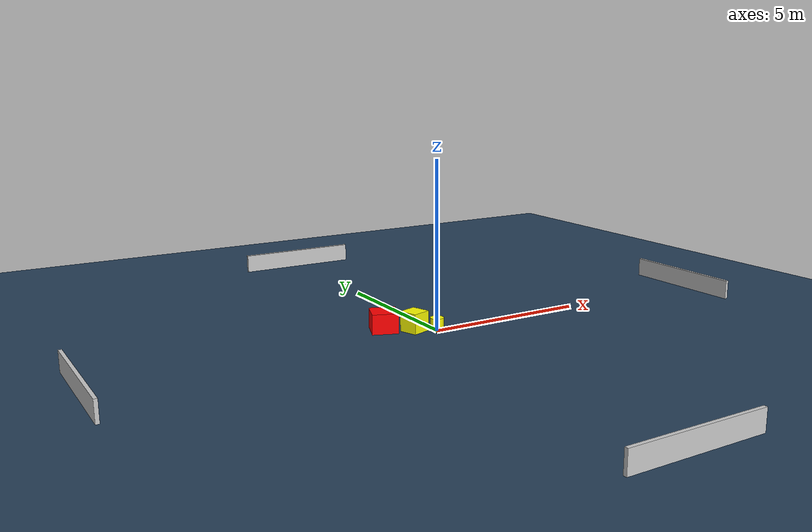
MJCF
<?xml version="1.0" ?>
<mujoco model="generated_environment">
  <option timestep="0.01" integrator="RK4" cone="elliptic"/>
  <default>
    <geom density="1"/>
  </default>
  <asset>
    <texture builtin="gradient" height="3072" name="skybox" rgb1="0.3 0.5 0.7" rgb2="0 0 0" type="skybox" width="512"/>
    <texture builtin="checker" height="300" name="groundplane" rgb1="0.2 0.3 0.4" rgb2="0.1 0.2 0.3" type="2d" width="300"/>
    <material name="groundplane" reflectance="0.2" texrepeat="5 5" texture="groundplane"/>
  </asset>
  <worldbody>
    <light dir="0 0 -1" directional="true" pos="0 0 1.5"/>
    <geom condim="3" friction="0.5 0.005 0.001" material="groundplane" name="floor" pos="0 0 0" size="0 0 0.05" type="plane"/>
    <body name="walls">
      <geom name="wall_1" condim="4" pos="-10.0 0.0 0.3" rgba="0.800000011920929 0.800000011920929 0.800000011920929 1.0" size="0.05 2.0 0.3" type="box"/>
      <geom name="wall_2" condim="4" pos="10.0 0.0 0.3" rgba="0.800000011920929 0.800000011920929 0.800000011920929 1.0" size="0.05 2.0 0.3" type="box"/>
      <geom name="wall_3" condim="4" pos="0.0 -10.0 0.3" rgba="0.800000011920929 0.800000011920929 0.800000011920929 1.0" size="2.0 0.05 0.3" type="box"/>
      <geom name="wall_4" condim="4" pos="0.0 10.0 0.3" rgba="0.800000011920929 0.800000011920929 0.800000011920929 1.0" size="2.0 0.05 0.3" type="box"/>
    </body>
    <body name="robot">
      <joint name="joint_x" type="slide" pos="0 0 0" axis="1 0 0"/>
      <joint name="joint_y" type="slide" pos="0 0 0" axis="0 1 0"/>
      <geom name="robot" type="cylinder" pos="0.0 0.0 0.2" size="0.2 0.2 0.0" mass="5.0" friction="1.0 0.005 0.0001" condim="4" rgba="1.0 1.0 0.0 1.0"/>
    </body>
    <body name="obstacle_1_movable">
      <geom name="obstacle_1_movable" condim="4" pos="-0.5675830898705674 0.33464170941421817 0.3" euler="0 0 17.97355096992824" friction="0.0 0.005 0.001" rgba="1.0 1.0 0.0 1.0" size="0.2910964377618064 0.2876356708491159 0.3" type="box" mass="0.1"/>
      <joint type="free"/>
    </body>
    <body name="obstacle_2_static">
      <geom name="obstacle_2_static" condim="4" pos="-1.3143437543655365 0.821755758204953 0.3" euler="0 0 339.2912980184864" friction="0.0 0.005 0.001" rgba="1.0 0.0 0.0 1.0" size="0.39064231430487223 0.39218368139527826 0.3" type="box"/>
    </body>
  </worldbody>
  <actuator>
    <motor name="actuator_x" joint="joint_x" gear="1" ctrlrange="-1 1"/>
    <motor name="actuator_y" joint="joint_y" gear="1" ctrlrange="-1 1"/>
  </actuator>
</mujoco>
